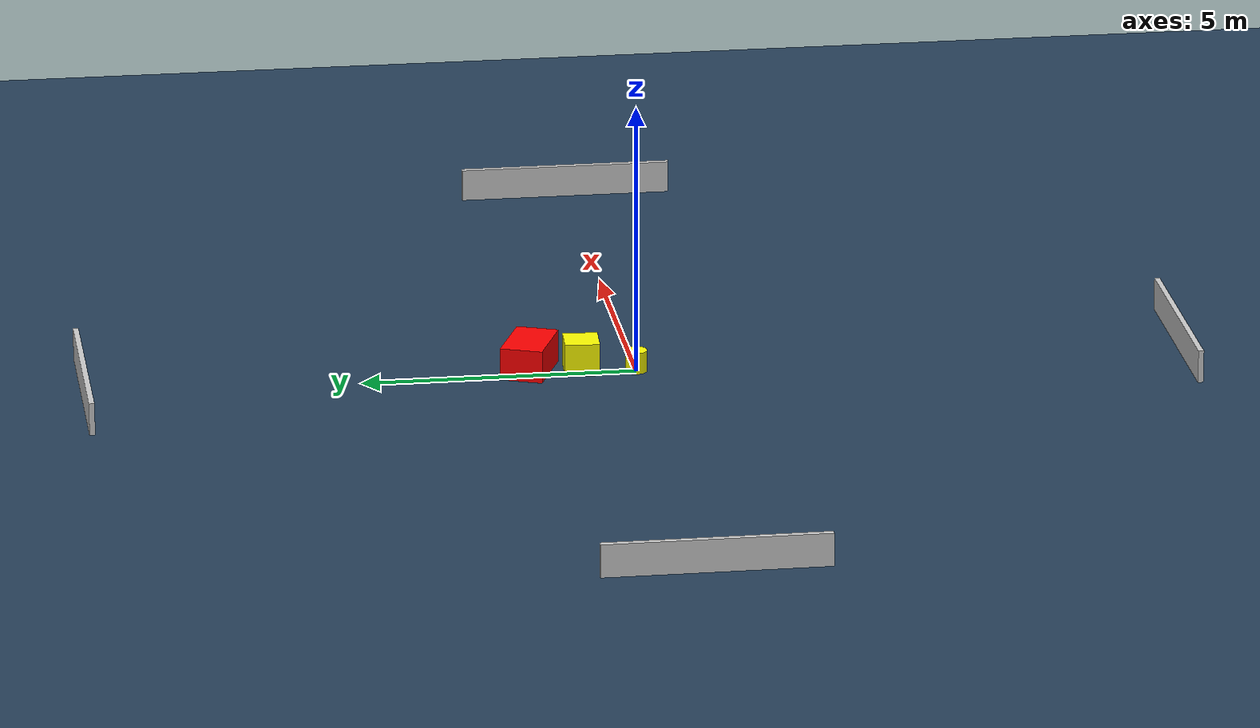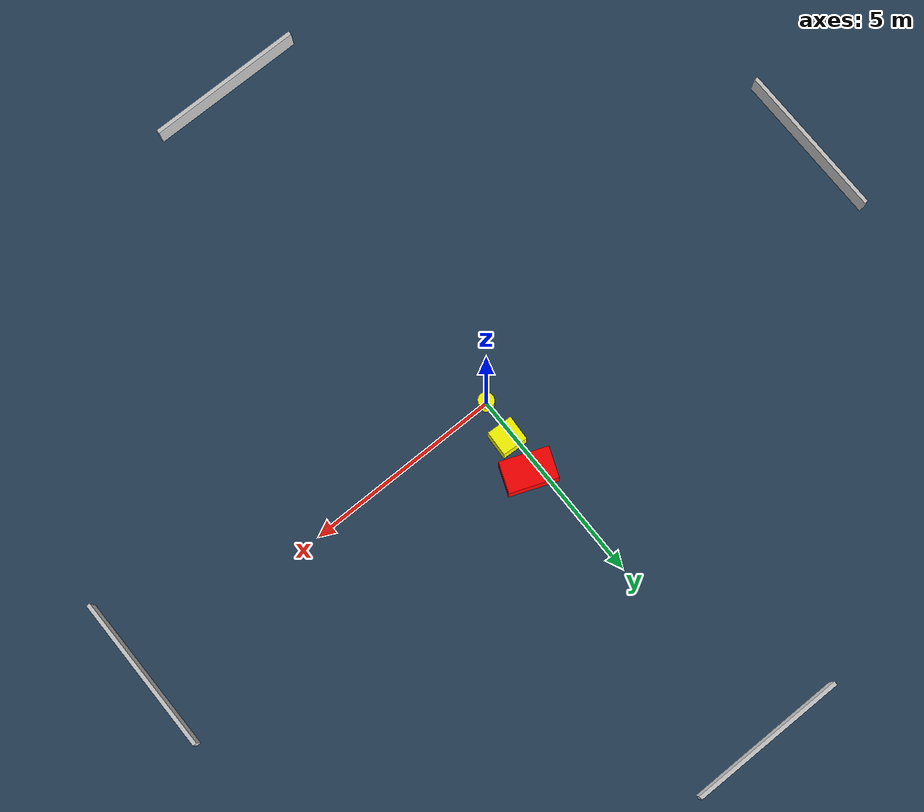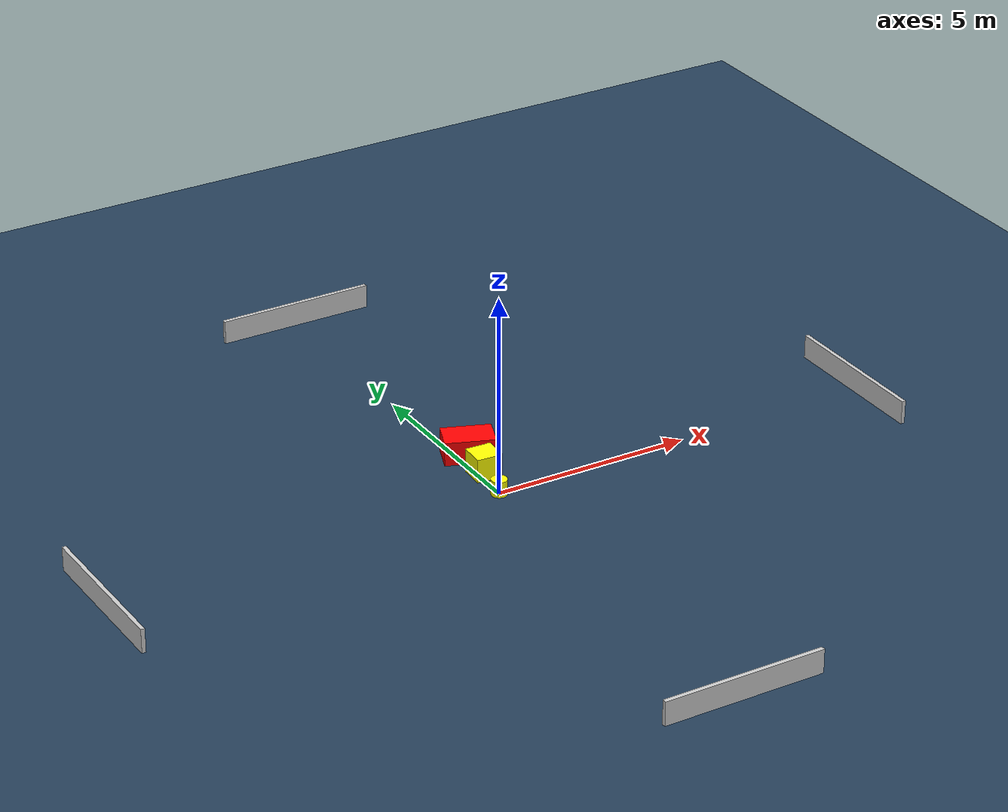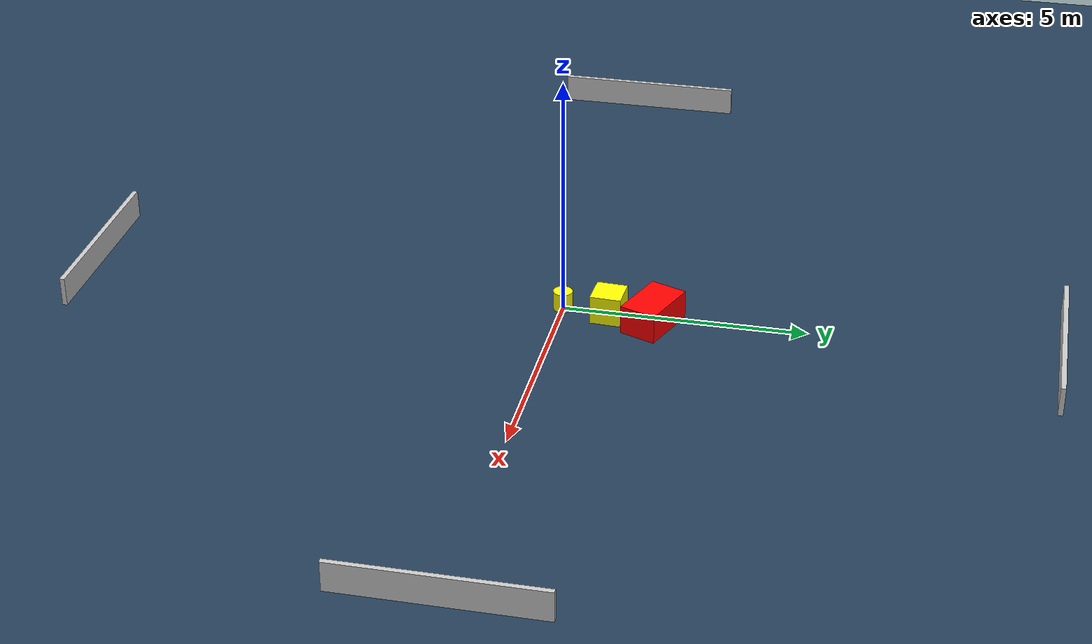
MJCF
<?xml version="1.0" ?>
<mujoco model="generated_environment">
  <option timestep="0.01" integrator="RK4" cone="elliptic"/>
  <default>
    <geom density="1"/>
  </default>
  <asset>
    <texture builtin="gradient" height="3072" name="skybox" rgb1="0.3 0.5 0.7" rgb2="0 0 0" type="skybox" width="512"/>
    <texture builtin="checker" height="300" name="groundplane" rgb1="0.2 0.3 0.4" rgb2="0.1 0.2 0.3" type="2d" width="300"/>
    <material name="groundplane" reflectance="0.2" texrepeat="5 5" texture="groundplane"/>
  </asset>
  <worldbody>
    <light dir="0 0 -1" directional="true" pos="0 0 1.5"/>
    <geom condim="3" friction="0.5 0.005 0.001" material="groundplane" name="floor" pos="0 0 0" size="0 0 0.05" type="plane"/>
    <body name="walls">
      <geom name="wall_1" condim="4" pos="-10.0 0.0 0.3" rgba="0.800000011920929 0.800000011920929 0.800000011920929 1.0" size="0.05 2.0 0.3" type="box"/>
      <geom name="wall_2" condim="4" pos="10.0 0.0 0.3" rgba="0.800000011920929 0.800000011920929 0.800000011920929 1.0" size="0.05 2.0 0.3" type="box"/>
      <geom name="wall_3" condim="4" pos="0.0 -10.0 0.3" rgba="0.800000011920929 0.800000011920929 0.800000011920929 1.0" size="2.0 0.05 0.3" type="box"/>
      <geom name="wall_4" condim="4" pos="0.0 10.0 0.3" rgba="0.800000011920929 0.800000011920929 0.800000011920929 1.0" size="2.0 0.05 0.3" type="box"/>
    </body>
    <body name="robot">
      <joint name="joint_x" type="slide" pos="0 0 0" axis="1 0 0"/>
      <joint name="joint_y" type="slide" pos="0 0 0" axis="0 1 0"/>
      <geom name="robot" type="cylinder" pos="0.0 0.0 0.2" size="0.2 0.2 0.0" mass="5.0" friction="1.0 0.005 0.0001" condim="4" rgba="1.0 1.0 0.0 1.0"/>
    </body>
    <body name="obstacle_1_movable">
      <geom name="obstacle_1_movable" condim="4" pos="0.1698378706048454 0.980761321658097 0.3" euler="0 0 86.85197890130209" friction="0.0 0.005 0.001" rgba="1.0 1.0 0.0 1.0" size="0.31732430397259853 0.3249493145670057 0.3" type="box" mass="0.1"/>
      <joint type="free"/>
    </body>
    <body name="obstacle_2_static">
      <geom name="obstacle_2_static" condim="4" pos="0.2849091924770998 1.909251461638917 0.3" euler="0 0 248.71341012851067" friction="0.0 0.005 0.001" rgba="1.0 0.0 0.0 1.0" size="0.38904985996325814 0.6138898468776621 0.3" type="box"/>
    </body>
  </worldbody>
  <actuator>
    <motor name="actuator_x" joint="joint_x" gear="1" ctrlrange="-1 1"/>
    <motor name="actuator_y" joint="joint_y" gear="1" ctrlrange="-1 1"/>
  </actuator>
</mujoco>
